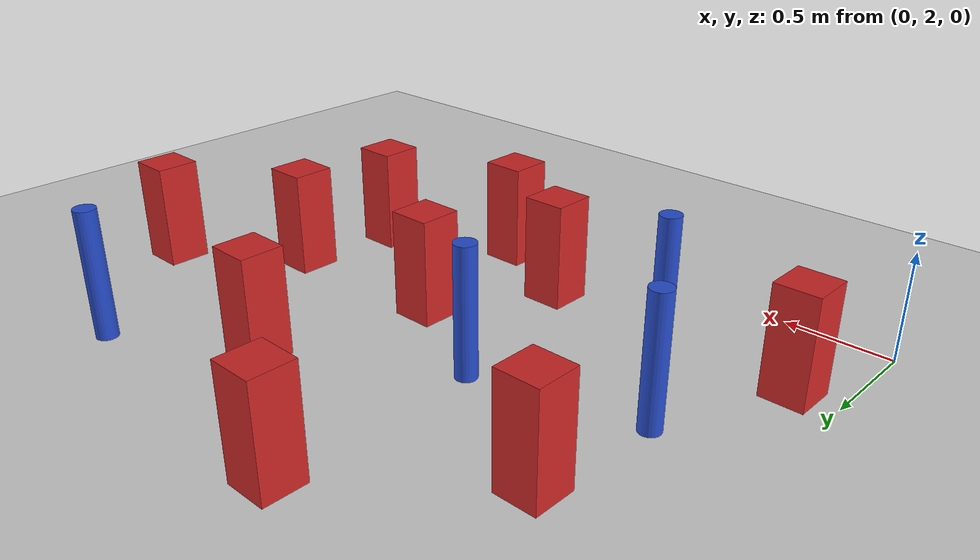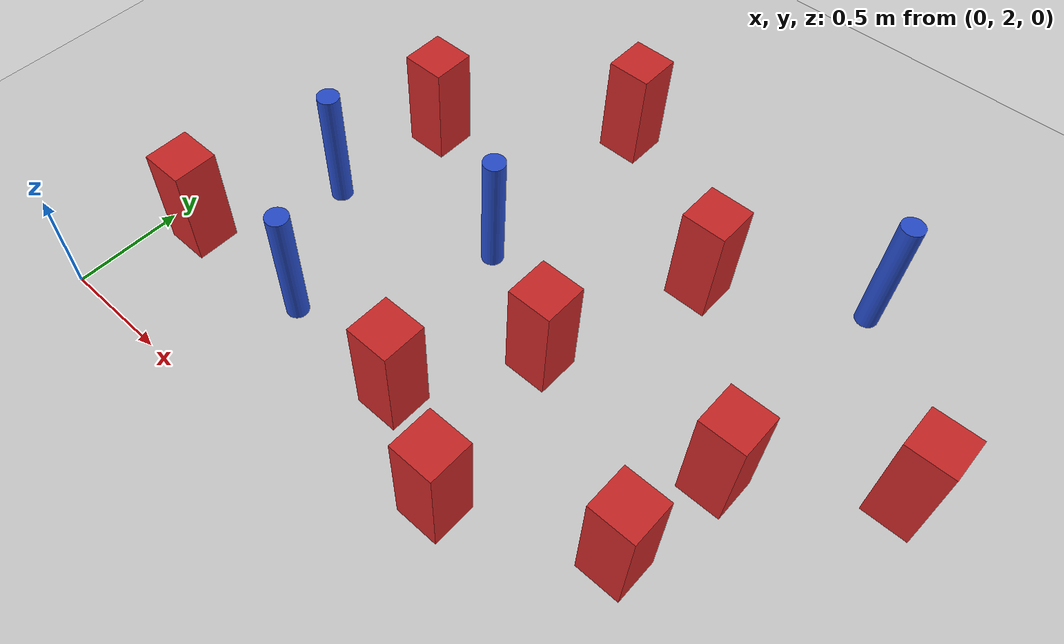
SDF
<sdf version="1.6">
 <world name="default">
  <model name="ground_plane">
   <static>1</static>
   <link name="link">
    <collision name="collision">
     <geometry><plane><normal>0 0 1</normal><size>100 100</size></plane></geometry>
     <surface><friction><ode><mu>100</mu><mu2>50</mu2></ode></friction></surface>
    </collision>
    <visual name="visual">
     <cast_shadows>0</cast_shadows>
     <geometry><plane><normal>0 0 1</normal><size>100 100</size></plane></geometry>
     <material>
      <ambient>1.0 1.0 1.0 1.0</ambient>
      <diffuse>0.8 0.8 0.8 1.0</diffuse>
      <specular>0.01 0.01 0.01 1.000000</specular>
     </material>
    </visual>
   </link>
  </model>
  <model name="square_post_obstacle17">
   <static>true</static>
   <pose>1.22932830109 4.28504683522 -6.11067671241e-07 -5.50515727128e-06 -8.79689657224e-07 2.37013304536e-05</pose>
   <link name="link">
    <pose>0 0 0.25 0 -0 0</pose>
    <inertial>
     <mass>100</mass>
     <inertia>
      <ixx>0.166667</ixx>
      <ixy>0</ixy>
      <ixz>0</ixz>
      <iyy>0.166667</iyy>
      <iyz>0</iyz>
      <izz>0.166667</izz>
     </inertia>
    </inertial>
    <collision name="collision"><geometry><box><size>.2 .2 .5</size></box></geometry></collision>
    <visual name="visual">
     <geometry><box><size>.2 .2 .5</size></box></geometry>
     <material>
      <script><name>Gazebo/Red</name><uri>file://media/materials/scripts/gazebo.material</uri></script>
     </material>
    </visual>
   </link>
  </model>
  <model name="square_post_obstacle19">
   <static>true</static>
   <pose>0.535574568028 3.69324982012 -6.11067671241e-07 -5.50515727128e-06 -8.79689657224e-07 2.37013304536e-05</pose>
   <link name="link">
    <pose>0 0 0.25 0 -0 0</pose>
    <inertial>
     <mass>100</mass>
     <inertia>
      <ixx>0.166667</ixx>
      <ixy>0</ixy>
      <ixz>0</ixz>
      <iyy>0.166667</iyy>
      <iyz>0</iyz>
      <izz>0.166667</izz>
     </inertia>
    </inertial>
    <collision name="collision"><geometry><box><size>.2 .2 .5</size></box></geometry></collision>
    <visual name="visual">
     <geometry><box><size>.2 .2 .5</size></box></geometry>
     <material>
      <script><name>Gazebo/Red</name><uri>file://media/materials/scripts/gazebo.material</uri></script>
     </material>
    </visual>
   </link>
  </model>
  <model name="square_post_obstacle32">
   <static>true</static>
   <pose>2.49744956392 2.56830694405 -6.11067671241e-07 -5.50515727128e-06 -8.79689657224e-07 2.37013304536e-05</pose>
   <link name="link">
    <pose>0 0 0.25 0 -0 0</pose>
    <inertial>
     <mass>100</mass>
     <inertia>
      <ixx>0.166667</ixx>
      <ixy>0</ixy>
      <ixz>0</ixz>
      <iyy>0.166667</iyy>
      <iyz>0</iyz>
      <izz>0.166667</izz>
     </inertia>
    </inertial>
    <collision name="collision"><geometry><box><size>.2 .2 .5</size></box></geometry></collision>
    <visual name="visual">
     <geometry><box><size>.2 .2 .5</size></box></geometry>
     <material>
      <script><name>Gazebo/Red</name><uri>file://media/materials/scripts/gazebo.material</uri></script>
     </material>
    </visual>
   </link>
  </model>
  <model name="pole_obstacle64">
   <static>true</static>
   <pose>0.807548856404 2.53919677581 -9.47619616065e-06 5.49618799737e-07 2.36310414066e-07 -1.55090534797e-07</pose>
   <link name="link">
    <pose>0 0 0.3 0 -0 0</pose>
    <inertial>
     <mass>1</mass>
     <inertia><ixx>0.145833</ixx><ixy>0</ixy><ixz>0</ixz><iyy>0.145833</iyy><iyz>0</iyz><izz>0.125</izz></inertia>
    </inertial>
    <collision name="collision">
     <geometry><cylinder><radius>0.05</radius><length>.6</length></cylinder></geometry>
    </collision>
    <visual name="visual">
     <geometry><cylinder><radius>0.05</radius><length>.6</length></cylinder></geometry>
     <material>
      <script><name>Gazebo/Blue</name><uri>file://media/materials/scripts/gazebo.material</uri></script>
     </material>
    </visual>
   </link>
  </model>
  <model name="square_post_obstacle57">
   <static>true</static>
   <pose>3.13172925563 3.46324236781 -6.11067671241e-07 -5.50515727128e-06 -8.79689657224e-07 2.37013304536e-05</pose>
   <link name="link">
    <pose>0 0 0.25 0 -0 0</pose>
    <inertial>
     <mass>100</mass>
     <inertia>
      <ixx>0.166667</ixx>
      <ixy>0</ixy>
      <ixz>0</ixz>
      <iyy>0.166667</iyy>
      <iyz>0</iyz>
      <izz>0.166667</izz>
     </inertia>
    </inertial>
    <collision name="collision"><geometry><box><size>.2 .2 .5</size></box></geometry></collision>
    <visual name="visual">
     <geometry><box><size>.2 .2 .5</size></box></geometry>
     <material>
      <script><name>Gazebo/Red</name><uri>file://media/materials/scripts/gazebo.material</uri></script>
     </material>
    </visual>
   </link>
  </model>
  <model name="pole_obstacle75">
   <static>true</static>
   <pose>2.60426254943 4.14675679836 -9.47619616065e-06 5.49618799738e-07 2.3631041406e-07 -1.55090534801e-07</pose>
   <link name="link">
    <pose>0 0 0.3 0 -0 0</pose>
    <inertial>
     <mass>1</mass>
     <inertia><ixx>0.145833</ixx><ixy>0</ixy><ixz>0</ixz><iyy>0.145833</iyy><iyz>0</iyz><izz>0.125</izz></inertia>
    </inertial>
    <collision name="collision">
     <geometry><cylinder><radius>0.05</radius><length>.6</length></cylinder></geometry>
    </collision>
    <visual name="visual">
     <geometry><cylinder><radius>0.05</radius><length>.6</length></cylinder></geometry>
     <material>
      <script><name>Gazebo/Blue</name><uri>file://media/materials/scripts/gazebo.material</uri></script>
     </material>
    </visual>
   </link>
  </model>
  <model name="square_post_obstacle70">
   <static>true</static>
   <pose>2.57502859299 3.06822786968 -6.11067671241e-07 -5.50515727128e-06 -8.79689657224e-07 2.37013304536e-05</pose>
   <link name="link">
    <pose>0 0 0.25 0 -0 0</pose>
    <inertial>
     <mass>100</mass>
     <inertia>
      <ixx>0.166667</ixx>
      <ixy>0</ixy>
      <ixz>0</ixz>
      <iyy>0.166667</iyy>
      <iyz>0</iyz>
      <izz>0.166667</izz>
     </inertia>
    </inertial>
    <collision name="collision"><geometry><box><size>.2 .2 .5</size></box></geometry></collision>
    <visual name="visual">
     <geometry><box><size>.2 .2 .5</size></box></geometry>
     <material>
      <script><name>Gazebo/Red</name><uri>file://media/materials/scripts/gazebo.material</uri></script>
     </material>
    </visual>
   </link>
  </model>
  <model name="square_post_obstacle117">
   <static>true</static>
   <pose>1.42630835845 2.50728604025 -6.11067671241e-07 -5.50515727128e-06 -8.79689657224e-07 2.37013304536e-05</pose>
   <link name="link">
    <pose>0 0 0.25 0 -0 0</pose>
    <inertial>
     <mass>100</mass>
     <inertia>
      <ixx>0.166667</ixx>
      <ixy>0</ixy>
      <ixz>0</ixz>
      <iyy>0.166667</iyy>
      <iyz>0</iyz>
      <izz>0.166667</izz>
     </inertia>
    </inertial>
    <collision name="collision"><geometry><box><size>.2 .2 .5</size></box></geometry></collision>
    <visual name="visual">
     <geometry><box><size>.2 .2 .5</size></box></geometry>
     <material>
      <script><name>Gazebo/Red</name><uri>file://media/materials/scripts/gazebo.material</uri></script>
     </material>
    </visual>
   </link>
  </model>
  <model name="pole_obstacle186">
   <static>true</static>
   <pose>1.22152732815 3.31450880866 -9.47619616065e-06 5.49618799737e-07 2.36310414062e-07 -1.55090534798e-07</pose>
   <link name="link">
    <pose>0 0 0.3 0 -0 0</pose>
    <inertial>
     <mass>1</mass>
     <inertia><ixx>0.145833</ixx><ixy>0</ixy><ixz>0</ixz><iyy>0.145833</iyy><iyz>0</iyz><izz>0.125</izz></inertia>
    </inertial>
    <collision name="collision">
     <geometry><cylinder><radius>0.05</radius><length>.6</length></cylinder></geometry>
    </collision>
    <visual name="visual">
     <geometry><cylinder><radius>0.05</radius><length>.6</length></cylinder></geometry>
     <material>
      <script><name>Gazebo/Blue</name><uri>file://media/materials/scripts/gazebo.material</uri></script>
     </material>
    </visual>
   </link>
  </model>
  <model name="pole_obstacle202">
   <static>true</static>
   <pose>0.456409857814 3.11784627603 -9.47619616065e-06 5.49618799738e-07 2.36310414066e-07 -1.55090534797e-07</pose>
   <link name="link">
    <pose>0 0 0.3 0 -0 0</pose>
    <inertial>
     <mass>1</mass>
     <inertia><ixx>0.145833</ixx><ixy>0</ixy><ixz>0</ixz><iyy>0.145833</iyy><iyz>0</iyz><izz>0.125</izz></inertia>
    </inertial>
    <collision name="collision">
     <geometry><cylinder><radius>0.05</radius><length>.6</length></cylinder></geometry>
    </collision>
    <visual name="visual">
     <geometry><cylinder><radius>0.05</radius><length>.6</length></cylinder></geometry>
     <material>
      <script><name>Gazebo/Blue</name><uri>file://media/materials/scripts/gazebo.material</uri></script>
     </material>
    </visual>
   </link>
  </model>
  <model name="square_post_obstacle216">
   <static>true</static>
   <pose>1.9909599502 3.78223997688 -6.11067671241e-07 -5.50515727128e-06 -8.79689657224e-07 2.37013304536e-05</pose>
   <link name="link">
    <pose>0 0 0.25 0 -0 0</pose>
    <inertial>
     <mass>100</mass>
     <inertia>
      <ixx>0.166667</ixx>
      <ixy>0</ixy>
      <ixz>0</ixz>
      <iyy>0.166667</iyy>
      <iyz>0</iyz>
      <izz>0.166667</izz>
     </inertia>
    </inertial>
    <collision name="collision"><geometry><box><size>.2 .2 .5</size></box></geometry></collision>
    <visual name="visual">
     <geometry><box><size>.2 .2 .5</size></box></geometry>
     <material>
      <script><name>Gazebo/Red</name><uri>file://media/materials/scripts/gazebo.material</uri></script>
     </material>
    </visual>
   </link>
  </model>
  <model name="square_post_obstacle225">
   <static>true</static>
   <pose>1.8756399502 2.28312997688 -6.11067671241e-07 -5.50515727128e-06 -8.79689657224e-07 2.37013304536e-05</pose>
   <link name="link">
    <pose>0 0 0.25 0 -0 0</pose>
    <inertial>
     <mass>100</mass>
     <inertia>
      <ixx>0.166667</ixx>
      <ixy>0</ixy>
      <ixz>0</ixz>
      <iyy>0.166667</iyy>
      <iyz>0</iyz>
      <izz>0.166667</izz>
     </inertia>
    </inertial>
    <collision name="collision"><geometry><box><size>.2 .2 .5</size></box></geometry></collision>
    <visual name="visual">
     <geometry><box><size>.2 .2 .5</size></box></geometry>
     <material>
      <script><name>Gazebo/Red</name><uri>file://media/materials/scripts/gazebo.material</uri></script>
     </material>
    </visual>
   </link>
  </model>
  <model name="square_post_obstacle229">
   <static>true</static>
   <pose>0.188099950203 2.52849997688 -6.11067671241e-07 -5.50515727128e-06 -8.79689657224e-07 2.37013304536e-05</pose>
   <link name="link">
    <pose>0 0 0.25 0 -0 0</pose>
    <inertial>
     <mass>100</mass>
     <inertia>
      <ixx>0.166667</ixx>
      <ixy>0</ixy>
      <ixz>0</ixz>
      <iyy>0.166667</iyy>
      <iyz>0</iyz>
      <izz>0.166667</izz>
     </inertia>
    </inertial>
    <collision name="collision"><geometry><box><size>.2 .2 .5</size></box></geometry></collision>
    <visual name="visual">
     <geometry><box><size>.2 .2 .5</size></box></geometry>
     <material>
      <script><name>Gazebo/Red</name><uri>file://media/materials/scripts/gazebo.material</uri></script>
     </material>
    </visual>
   </link>
  </model>
  <model name="square_post_obstacle232">
   <static>true</static>
   <pose>1.7400999502 3.03518997688 -6.11067671241e-07 -5.50515727128e-06 -8.79689657224e-07 2.37013304536e-05</pose>
   <link name="link">
    <pose>0 0 0.25 0 -0 0</pose>
    <inertial>
     <mass>100</mass>
     <inertia>
      <ixx>0.166667</ixx>
      <ixy>0</ixy>
      <ixz>0</ixz>
      <iyy>0.166667</iyy>
      <iyz>0</iyz>
      <izz>0.166667</izz>
     </inertia>
    </inertial>
    <collision name="collision"><geometry><box><size>.2 .2 .5</size></box></geometry></collision>
    <visual name="visual">
     <geometry><box><size>.2 .2 .5</size></box></geometry>
     <material>
      <script><name>Gazebo/Red</name><uri>file://media/materials/scripts/gazebo.material</uri></script>
     </material>
    </visual>
   </link>
  </model>
 </world>
</sdf>
